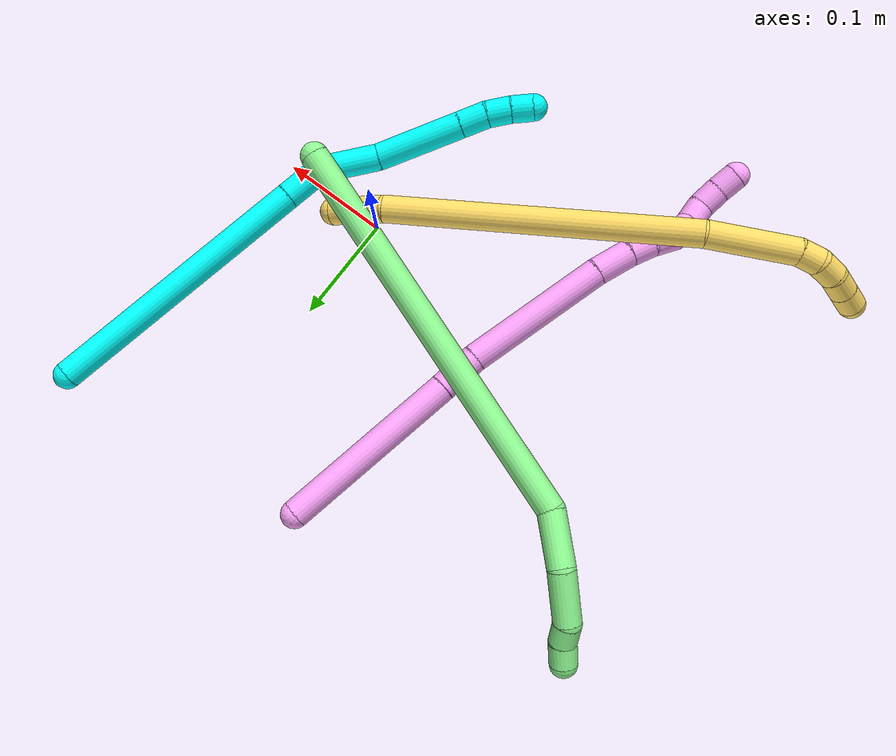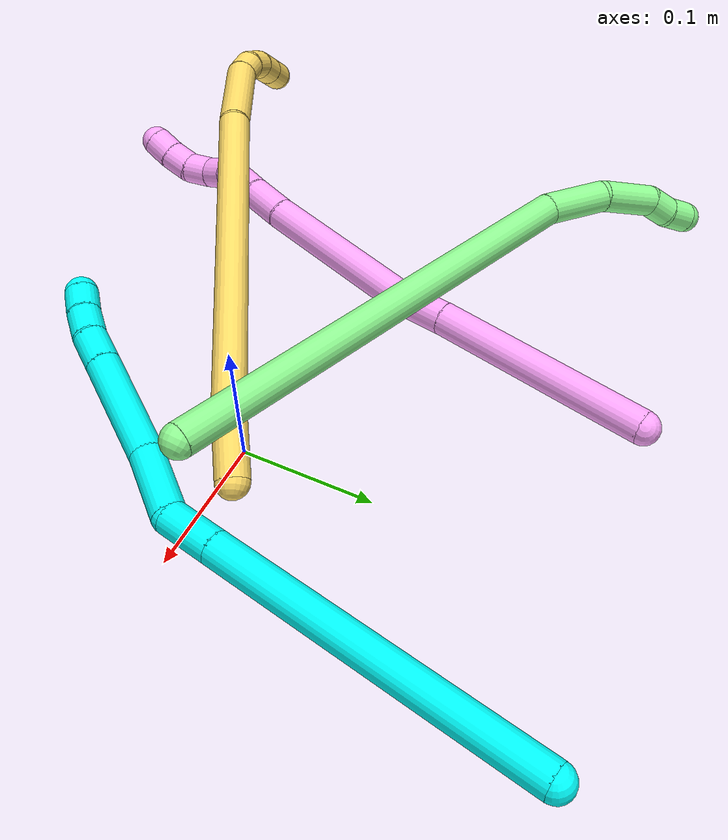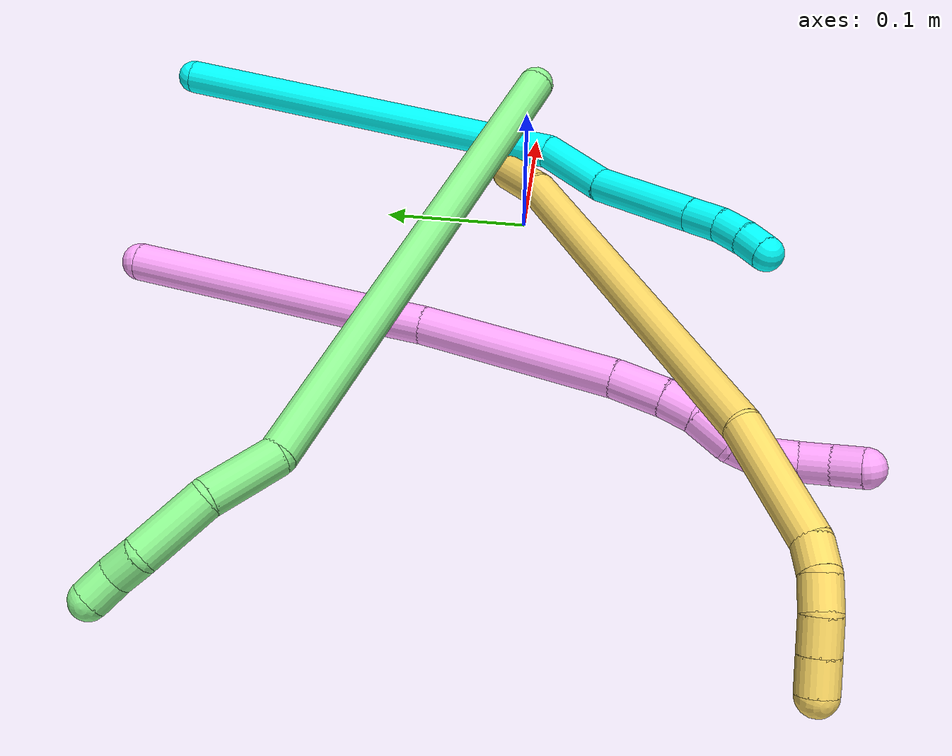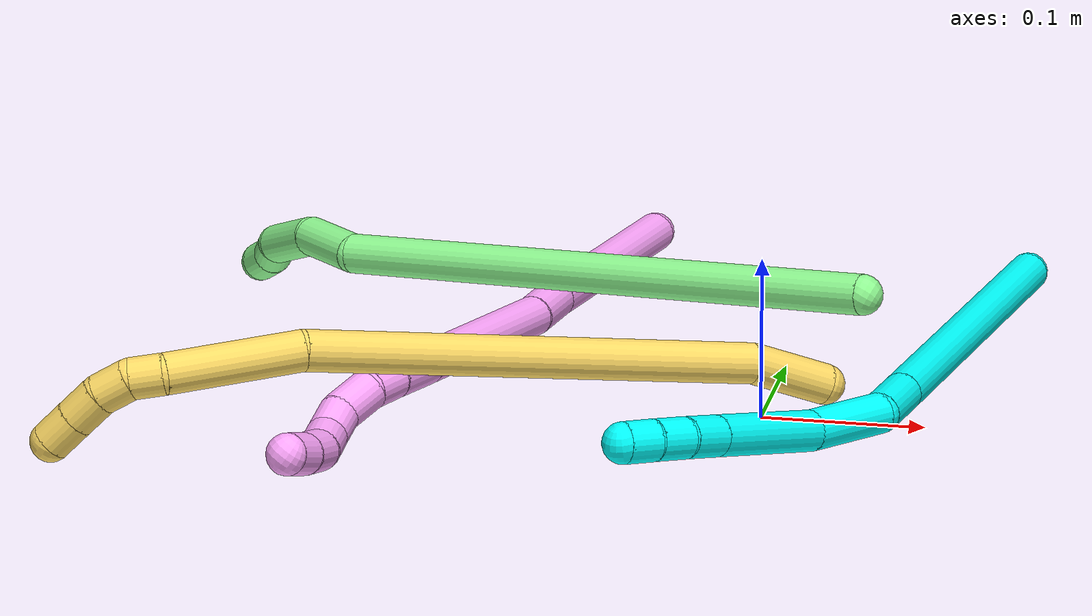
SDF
<sdf version="1.7">
 <world name="default">
  <model name="photoneo_s_sensor">
   <static>1</static>
   <pose>0 0 2 1.57079 1.57079 3.14159</pose>
   <link name="link">
    <inertial><mass>0.1</mass></inertial>
    <sensor name="sensor" type="depth">
     <update_rate>30</update_rate>
     <camera>
      <horizontal_fov>1.22</horizontal_fov>
      <image><width>1920</width><height>1200</height><format>B8G8R8</format></image>
      <clip><near>0.1</near><far>4</far></clip>
      <depth_camera><output>points</output></depth_camera>
     </camera>
     <plugin name="camera_plugin" filename="libgazebo_ros_depth_camera.so">
      <baseline>0.2</baseline>
      <alwaysOn>1</alwaysOn>
      <updateRate>0.0</updateRate>
      <cameraName>camera_ir</cameraName>
      <imageTopicName>/camera/color/image_raw</imageTopicName>
      <cameraInfoTopicName>/camera/color/camera_info</cameraInfoTopicName>
      <depthImageTopicName>/camera/depth/image_raw</depthImageTopicName>
      <depthImageCameraInfoTopicName>/camera/depth/camera_info</depthImageCameraInfoTopicName>
      <pointCloudTopicName>/camera/depth/points</pointCloudTopicName>
      <frameName>fr_optical</frameName>
      <pointCloudCutoff>0.1</pointCloudCutoff>
      <pointCloudCutoffMax>2.0</pointCloudCutoffMax>
      <distortionK1>0</distortionK1>
      <distortionK2>0</distortionK2>
      <distortionK3>0</distortionK3>
      <distortionT1>0</distortionT1>
      <distortionT2>0</distortionT2>
      <CxPrime>0</CxPrime>
      <Cx>0</Cx>
      <Cy>0</Cy>
      <focalLength>0</focalLength>
      <hackBaseline>0</hackBaseline>
     </plugin>
    </sensor>
   </link>
  </model>
  <model name="bin">
   <static>1</static>
   <link name="bottom">
    <collision name="collision-bottom">
     <pose>0 0 -0.01 0 -0 0</pose>
     <geometry><box><size>0.8 0.6 0.02</size></box></geometry>
     <surface>
      <friction><ode><mu>100</mu><mu2>100</mu2></ode></friction>
      <contact><collide_bitmask>65535</collide_bitmask></contact>
     </surface>
    </collision>
   </link>
   <link name="west_wall">
    <collision name="collision-west_wall">
     <pose>-0.41 0 0.1 0 -0 0</pose>
     <geometry><box><size>0.02 0.6 0.2</size></box></geometry>
     <surface>
      <friction><ode><mu>100</mu><mu2>100</mu2></ode></friction>
      <contact><collide_bitmask>65535</collide_bitmask></contact>
     </surface>
    </collision>
   </link>
   <link name="east_wall">
    <collision name="collision-east_wall">
     <pose>0.41 0 0.1 0 -0 0</pose>
     <geometry><box><size>0.02 0.6 0.2</size></box></geometry>
     <surface>
      <friction><ode><mu>100</mu><mu2>100</mu2></ode></friction>
      <contact><collide_bitmask>65535</collide_bitmask></contact>
     </surface>
    </collision>
   </link>
   <link name="south_wall">
    <collision name="collision-south_wall">
     <pose>0 -0.31 0.1 0 -0 0</pose>
     <geometry><box><size>0.8 0.02 0.2</size></box></geometry>
     <surface>
      <friction><ode><mu>100</mu><mu2>100</mu2></ode></friction>
      <contact><collide_bitmask>65535</collide_bitmask></contact>
     </surface>
    </collision>
   </link>
   <link name="north_wall">
    <collision name="collision-north_wall">
     <pose>0 0.31 0.1 0 -0 0</pose>
     <geometry><box><size>0.8 0.02 0.2</size></box></geometry>
     <surface>
      <friction><ode><mu>100</mu><mu2>100</mu2></ode></friction>
      <contact><collide_bitmask>65535</collide_bitmask></contact>
     </surface>
    </collision>
   </link>
  </model>
  <model name="3">
   <static>0</static>
   <link name="3">
    <collision name="collision-cylinder-e_1_1_4">
     <pose>-0.096451 -0.079969 -0.019293 1.80753 -0.864621 -1.0601</pose>
     <geometry><cylinder><radius>0.0125</radius><length>0.253535</length></cylinder></geometry>
     <surface>
      <friction><ode><mu>1.16</mu><mu2>1.16</mu2><slip1>0</slip1><slip2>0</slip2></ode></friction>
      <contact><ode><kp>1e+06</kp><kd>1</kd><max_vel>0</max_vel><min_depth>0.001</min_depth></ode></contact>
     </surface>
    </collision>
    <visual name="visual-cylinder-e_1_1_4">
     <pose>-0.096451 -0.079969 -0.019293 1.80753 -0.864621 -1.0601</pose>
     <geometry><cylinder><radius>0.0125</radius><length>0.253535</length></cylinder></geometry>
     <material><ambient>0.003922 1 0.996078 1</ambient></material>
    </visual>
    <collision name="collision-cylinder-e_2_4_5">
     <pose>-0.208193 -0.172628 -0.04177 1.81656 -0.862998 -1.06635</pose>
     <geometry><cylinder><radius>0.0125</radius><length>0.040249</length></cylinder></geometry>
     <surface>
      <friction><ode><mu>1.16</mu><mu2>1.16</mu2><slip1>0</slip1><slip2>0</slip2></ode></friction>
      <contact><ode><kp>1e+06</kp><kd>1</kd><max_vel>0</max_vel><min_depth>0.001</min_depth></ode></contact>
     </surface>
    </collision>
    <visual name="visual-cylinder-e_2_4_5">
     <pose>-0.208193 -0.172628 -0.04177 1.81656 -0.862998 -1.06635</pose>
     <geometry><cylinder><radius>0.0125</radius><length>0.040249</length></cylinder></geometry>
     <material><ambient>0.003922 1 0.996078 1</ambient></material>
    </visual>
    <collision name="collision-cylinder-e_3_5_6">
     <pose>-0.233143 -0.210758 -0.049897 1.76275 -0.356804 -0.430692</pose>
     <geometry><cylinder><radius>0.0125</radius><length>0.055313</length></cylinder></geometry>
     <surface>
      <friction><ode><mu>1.16</mu><mu2>1.16</mu2><slip1>0</slip1><slip2>0</slip2></ode></friction>
      <contact><ode><kp>1e+06</kp><kd>1</kd><max_vel>0</max_vel><min_depth>0.001</min_depth></ode></contact>
     </surface>
    </collision>
    <visual name="visual-cylinder-e_3_5_6">
     <pose>-0.233143 -0.210758 -0.049897 1.76275 -0.356804 -0.430692</pose>
     <geometry><cylinder><radius>0.0125</radius><length>0.055313</length></cylinder></geometry>
     <material><ambient>0.003922 1 0.996078 1</ambient></material>
    </visual>
    <collision name="collision-cylinder-e_4_6_7">
     <pose>-0.259597 -0.270418 -0.06958 1.97748 -0.423454 -0.631384</pose>
     <geometry><cylinder><radius>0.0125</radius><length>0.081741</length></cylinder></geometry>
     <surface>
      <friction><ode><mu>1.16</mu><mu2>1.16</mu2><slip1>0</slip1><slip2>0</slip2></ode></friction>
      <contact><ode><kp>1e+06</kp><kd>1</kd><max_vel>0</max_vel><min_depth>0.001</min_depth></ode></contact>
     </surface>
    </collision>
    <visual name="visual-cylinder-e_4_6_7">
     <pose>-0.259597 -0.270418 -0.06958 1.97748 -0.423454 -0.631384</pose>
     <geometry><cylinder><radius>0.0125</radius><length>0.081741</length></cylinder></geometry>
     <material><ambient>0.003922 1 0.996078 1</ambient></material>
    </visual>
    <collision name="collision-cylinder-e_5_7_8">
     <pose>-0.281755 -0.315492 -0.088955 1.97452 -0.426591 -0.633975</pose>
     <geometry><cylinder><radius>0.0125</radius><length>0.025925</length></cylinder></geometry>
     <surface>
      <friction><ode><mu>1.16</mu><mu2>1.16</mu2><slip1>0</slip1><slip2>0</slip2></ode></friction>
      <contact><ode><kp>1e+06</kp><kd>1</kd><max_vel>0</max_vel><min_depth>0.001</min_depth></ode></contact>
     </surface>
    </collision>
    <visual name="visual-cylinder-e_5_7_8">
     <pose>-0.281755 -0.315492 -0.088955 1.97452 -0.426591 -0.633975</pose>
     <geometry><cylinder><radius>0.0125</radius><length>0.025925</length></cylinder></geometry>
     <material><ambient>0.003922 1 0.996078 1</ambient></material>
    </visual>
    <collision name="collision-cylinder-e_6_8_9">
     <pose>-0.290218 -0.33665 -0.096865 1.87839 -0.279137 -0.379435</pose>
     <geometry><cylinder><radius>0.0125</radius><length>0.022498</length></cylinder></geometry>
     <surface>
      <friction><ode><mu>1.16</mu><mu2>1.16</mu2><slip1>0</slip1><slip2>0</slip2></ode></friction>
      <contact><ode><kp>1e+06</kp><kd>1</kd><max_vel>0</max_vel><min_depth>0.001</min_depth></ode></contact>
     </surface>
    </collision>
    <visual name="visual-cylinder-e_6_8_9">
     <pose>-0.290218 -0.33665 -0.096865 1.87839 -0.279137 -0.379435</pose>
     <geometry><cylinder><radius>0.0125</radius><length>0.022498</length></cylinder></geometry>
     <material><ambient>0.003922 1 0.996078 1</ambient></material>
    </visual>
    <collision name="collision-cylinder-e_7_9_2">
     <pose>-0.295242 -0.35683 -0.102653 1.82011 -0.186708 -0.239747</pose>
     <geometry><cylinder><radius>0.0125</radius><length>0.020739</length></cylinder></geometry>
     <surface>
      <friction><ode><mu>1.16</mu><mu2>1.16</mu2><slip1>0</slip1><slip2>0</slip2></ode></friction>
      <contact><ode><kp>1e+06</kp><kd>1</kd><max_vel>0</max_vel><min_depth>0.001</min_depth></ode></contact>
     </surface>
    </collision>
    <visual name="visual-cylinder-e_7_9_2">
     <pose>-0.295242 -0.35683 -0.102653 1.82011 -0.186708 -0.239747</pose>
     <geometry><cylinder><radius>0.0125</radius><length>0.020739</length></cylinder></geometry>
     <material><ambient>0.003922 1 0.996078 1</ambient></material>
    </visual>
    <collision name="collision-sphere-2">
     <pose>-0.297167 -0.366704 -0.105167 0 -0 0</pose>
     <geometry><sphere><radius>0.0125</radius></sphere></geometry>
     <surface>
      <friction><ode><mu>1.16</mu><mu2>1.16</mu2><slip1>0</slip1><slip2>0</slip2></ode></friction>
      <contact><ode><kp>1e+06</kp><kd>1</kd><max_vel>0</max_vel><min_depth>0.001</min_depth></ode></contact>
     </surface>
    </collision>
    <visual name="visual-sphere-2">
     <pose>-0.297167 -0.366704 -0.105167 0 -0 0</pose>
     <geometry><sphere><radius>0.0125</radius></sphere></geometry>
     <material><ambient>0.003922 1 0.996078 1</ambient></material>
    </visual>
    <collision name="collision-sphere-9">
     <pose>-0.293317 -0.346956 -0.100139 0 -0 0</pose>
     <geometry><sphere><radius>0.0125</radius></sphere></geometry>
     <surface>
      <friction><ode><mu>1.16</mu><mu2>1.16</mu2><slip1>0</slip1><slip2>0</slip2></ode></friction>
      <contact><ode><kp>1e+06</kp><kd>1</kd><max_vel>0</max_vel><min_depth>0.001</min_depth></ode></contact>
     </surface>
    </collision>
    <visual name="visual-sphere-9">
     <pose>-0.293317 -0.346956 -0.100139 0 -0 0</pose>
     <geometry><sphere><radius>0.0125</radius></sphere></geometry>
     <material><ambient>0.003922 1 0.996078 1</ambient></material>
    </visual>
    <collision name="collision-sphere-4">
     <pose>-0.192902 -0.159937 -0.038587 0 -0 0</pose>
     <geometry><sphere><radius>0.0125</radius></sphere></geometry>
     <surface>
      <friction><ode><mu>1.16</mu><mu2>1.16</mu2><slip1>0</slip1><slip2>0</slip2></ode></friction>
      <contact><ode><kp>1e+06</kp><kd>1</kd><max_vel>0</max_vel><min_depth>0.001</min_depth></ode></contact>
     </surface>
    </collision>
    <visual name="visual-sphere-4">
     <pose>-0.192902 -0.159937 -0.038587 0 -0 0</pose>
     <geometry><sphere><radius>0.0125</radius></sphere></geometry>
     <material><ambient>0.003922 1 0.996078 1</ambient></material>
    </visual>
    <collision name="collision-sphere-1">
     <geometry><sphere><radius>0.0125</radius></sphere></geometry>
     <surface>
      <friction><ode><mu>1.16</mu><mu2>1.16</mu2><slip1>0</slip1><slip2>0</slip2></ode></friction>
      <contact><ode><kp>1e+06</kp><kd>1</kd><max_vel>0</max_vel><min_depth>0.001</min_depth></ode></contact>
     </surface>
    </collision>
    <visual name="visual-sphere-1">
     <geometry><sphere><radius>0.0125</radius></sphere></geometry>
     <material><ambient>0.003922 1 0.996078 1</ambient></material>
    </visual>
    <collision name="collision-sphere-8">
     <pose>-0.287118 -0.326344 -0.093591 0 -0 0</pose>
     <geometry><sphere><radius>0.0125</radius></sphere></geometry>
     <surface>
      <friction><ode><mu>1.16</mu><mu2>1.16</mu2><slip1>0</slip1><slip2>0</slip2></ode></friction>
      <contact><ode><kp>1e+06</kp><kd>1</kd><max_vel>0</max_vel><min_depth>0.001</min_depth></ode></contact>
     </surface>
    </collision>
    <visual name="visual-sphere-8">
     <pose>-0.287118 -0.326344 -0.093591 0 -0 0</pose>
     <geometry><sphere><radius>0.0125</radius></sphere></geometry>
     <material><ambient>0.003922 1 0.996078 1</ambient></material>
    </visual>
    <collision name="collision-sphere-5">
     <pose>-0.223483 -0.185319 -0.044954 0 -0 0</pose>
     <geometry><sphere><radius>0.0125</radius></sphere></geometry>
     <surface>
      <friction><ode><mu>1.16</mu><mu2>1.16</mu2><slip1>0</slip1><slip2>0</slip2></ode></friction>
      <contact><ode><kp>1e+06</kp><kd>1</kd><max_vel>0</max_vel><min_depth>0.001</min_depth></ode></contact>
     </surface>
    </collision>
    <visual name="visual-sphere-5">
     <pose>-0.223483 -0.185319 -0.044954 0 -0 0</pose>
     <geometry><sphere><radius>0.0125</radius></sphere></geometry>
     <material><ambient>0.003922 1 0.996078 1</ambient></material>
    </visual>
    <collision name="collision-sphere-6">
     <pose>-0.242803 -0.236197 -0.054841 0 -0 0</pose>
     <geometry><sphere><radius>0.0125</radius></sphere></geometry>
     <surface>
      <friction><ode><mu>1.16</mu><mu2>1.16</mu2><slip1>0</slip1><slip2>0</slip2></ode></friction>
      <contact><ode><kp>1e+06</kp><kd>1</kd><max_vel>0</max_vel><min_depth>0.001</min_depth></ode></contact>
     </surface>
    </collision>
    <visual name="visual-sphere-6">
     <pose>-0.242803 -0.236197 -0.054841 0 -0 0</pose>
     <geometry><sphere><radius>0.0125</radius></sphere></geometry>
     <material><ambient>0.003922 1 0.996078 1</ambient></material>
    </visual>
    <collision name="collision-sphere-7">
     <pose>-0.276391 -0.30464 -0.08432 0 -0 0</pose>
     <geometry><sphere><radius>0.0125</radius></sphere></geometry>
     <surface>
      <friction><ode><mu>1.16</mu><mu2>1.16</mu2><slip1>0</slip1><slip2>0</slip2></ode></friction>
      <contact><ode><kp>1e+06</kp><kd>1</kd><max_vel>0</max_vel><min_depth>0.001</min_depth></ode></contact>
     </surface>
    </collision>
    <visual name="visual-sphere-7">
     <pose>-0.276391 -0.30464 -0.08432 0 -0 0</pose>
     <geometry><sphere><radius>0.0125</radius></sphere></geometry>
     <material><ambient>0.003922 1 0.996078 1</ambient></material>
    </visual>
    <inertial>
     <pose>-0.173811 -0.168276 -0.043269 0 -0 0</pose>
     <mass>0.5</mass>
     <inertia>
      <ixx>-0.000346</ixx>
      <ixy>0</ixy>
      <ixz>0</ixz>
      <iyy>-0.000118</iyy>
      <iyz>0</iyz>
      <izz>0.001994</izz>
     </inertia>
    </inertial>
   </link>
   <pose>0.131082 0.277242 0.015466 2.99899 -0.098327 2.07819</pose>
  </model>
  <model name="4">
   <static>0</static>
   <link name="4">
    <collision name="collision-cylinder-e_1_1_4">
     <pose>-0.043185 -0.066705 -0.022628 1.89783 -0.549981 -0.750015</pose>
     <geometry><cylinder><radius>0.0125</radius><length>0.165246</length></cylinder></geometry>
     <surface>
      <friction><ode><mu>1.16</mu><mu2>1.16</mu2><slip1>0</slip1><slip2>0</slip2></ode></friction>
      <contact><ode><kp>1e+06</kp><kd>1</kd><max_vel>0</max_vel><min_depth>0.001</min_depth></ode></contact>
     </surface>
    </collision>
    <visual name="visual-cylinder-e_1_1_4">
     <pose>-0.043185 -0.066705 -0.022628 1.89783 -0.549981 -0.750015</pose>
     <geometry><cylinder><radius>0.0125</radius><length>0.165246</length></cylinder></geometry>
     <material><ambient>1 0.65098 0.996078 1</ambient></material>
    </visual>
    <collision name="collision-cylinder-e_2_4_5">
     <pose>-0.095518 -0.149113 -0.050403 1.88759 -0.505635 -0.685031</pose>
     <geometry><cylinder><radius>0.0125</radius><length>0.037775</length></cylinder></geometry>
     <surface>
      <friction><ode><mu>1.16</mu><mu2>1.16</mu2><slip1>0</slip1><slip2>0</slip2></ode></friction>
      <contact><ode><kp>1e+06</kp><kd>1</kd><max_vel>0</max_vel><min_depth>0.001</min_depth></ode></contact>
     </surface>
    </collision>
    <visual name="visual-cylinder-e_2_4_5">
     <pose>-0.095518 -0.149113 -0.050403 1.88759 -0.505635 -0.685031</pose>
     <geometry><cylinder><radius>0.0125</radius><length>0.037775</length></cylinder></geometry>
     <material><ambient>1 0.65098 0.996078 1</ambient></material>
    </visual>
    <collision name="collision-cylinder-e_3_5_6">
     <pose>-0.144221 -0.21354 -0.074797 1.94698 -0.646712 -0.915558</pose>
     <geometry><cylinder><radius>0.0125</radius><length>0.131288</length></cylinder></geometry>
     <surface>
      <friction><ode><mu>1.16</mu><mu2>1.16</mu2><slip1>0</slip1><slip2>0</slip2></ode></friction>
      <contact><ode><kp>1e+06</kp><kd>1</kd><max_vel>0</max_vel><min_depth>0.001</min_depth></ode></contact>
     </surface>
    </collision>
    <visual name="visual-cylinder-e_3_5_6">
     <pose>-0.144221 -0.21354 -0.074797 1.94698 -0.646712 -0.915558</pose>
     <geometry><cylinder><radius>0.0125</radius><length>0.131288</length></cylinder></geometry>
     <material><ambient>1 0.65098 0.996078 1</ambient></material>
    </visual>
    <collision name="collision-cylinder-e_4_6_7">
     <pose>-0.194434 -0.273893 -0.100251 2.06113 -0.679952 -1.06573</pose>
     <geometry><cylinder><radius>0.0125</radius><length>0.033903</length></cylinder></geometry>
     <surface>
      <friction><ode><mu>1.16</mu><mu2>1.16</mu2><slip1>0</slip1><slip2>0</slip2></ode></friction>
      <contact><ode><kp>1e+06</kp><kd>1</kd><max_vel>0</max_vel><min_depth>0.001</min_depth></ode></contact>
     </surface>
    </collision>
    <visual name="visual-cylinder-e_4_6_7">
     <pose>-0.194434 -0.273893 -0.100251 2.06113 -0.679952 -1.06573</pose>
     <geometry><cylinder><radius>0.0125</radius><length>0.033903</length></cylinder></geometry>
     <material><ambient>1 0.65098 0.996078 1</ambient></material>
    </visual>
    <collision name="collision-cylinder-e_5_7_8">
     <pose>-0.211889 -0.292328 -0.111462 2.20476 -0.677496 -1.21653</pose>
     <geometry><cylinder><radius>0.0125</radius><length>0.021684</length></cylinder></geometry>
     <surface>
      <friction><ode><mu>1.16</mu><mu2>1.16</mu2><slip1>0</slip1><slip2>0</slip2></ode></friction>
      <contact><ode><kp>1e+06</kp><kd>1</kd><max_vel>0</max_vel><min_depth>0.001</min_depth></ode></contact>
     </surface>
    </collision>
    <visual name="visual-cylinder-e_5_7_8">
     <pose>-0.211889 -0.292328 -0.111462 2.20476 -0.677496 -1.21653</pose>
     <geometry><cylinder><radius>0.0125</radius><length>0.021684</length></cylinder></geometry>
     <material><ambient>1 0.65098 0.996078 1</ambient></material>
    </visual>
    <collision name="collision-cylinder-e_6_8_9">
     <pose>-0.224827 -0.306705 -0.12542 2.43966 -0.482487 -1.18336</pose>
     <geometry><cylinder><radius>0.0125</radius><length>0.026474</length></cylinder></geometry>
     <surface>
      <friction><ode><mu>1.16</mu><mu2>1.16</mu2><slip1>0</slip1><slip2>0</slip2></ode></friction>
      <contact><ode><kp>1e+06</kp><kd>1</kd><max_vel>0</max_vel><min_depth>0.001</min_depth></ode></contact>
     </surface>
    </collision>
    <visual name="visual-cylinder-e_6_8_9">
     <pose>-0.224827 -0.306705 -0.12542 2.43966 -0.482487 -1.18336</pose>
     <geometry><cylinder><radius>0.0125</radius><length>0.026474</length></cylinder></geometry>
     <material><ambient>1 0.65098 0.996078 1</ambient></material>
    </visual>
    <collision name="collision-cylinder-e_7_9_10">
     <pose>-0.233485 -0.322942 -0.139972 2.14442 -0.239305 -0.434655</pose>
     <geometry><cylinder><radius>0.0125</radius><length>0.021238</length></cylinder></geometry>
     <surface>
      <friction><ode><mu>1.16</mu><mu2>1.16</mu2><slip1>0</slip1><slip2>0</slip2></ode></friction>
      <contact><ode><kp>1e+06</kp><kd>1</kd><max_vel>0</max_vel><min_depth>0.001</min_depth></ode></contact>
     </surface>
    </collision>
    <visual name="visual-cylinder-e_7_9_10">
     <pose>-0.233485 -0.322942 -0.139972 2.14442 -0.239305 -0.434655</pose>
     <geometry><cylinder><radius>0.0125</radius><length>0.021238</length></cylinder></geometry>
     <material><ambient>1 0.65098 0.996078 1</ambient></material>
    </visual>
    <collision name="collision-cylinder-e_8_10_11">
     <pose>-0.239261 -0.341429 -0.147851 1.79889 -0.312553 -0.391569</pose>
     <geometry><cylinder><radius>0.0125</radius><length>0.021194</length></cylinder></geometry>
     <surface>
      <friction><ode><mu>1.16</mu><mu2>1.16</mu2><slip1>0</slip1><slip2>0</slip2></ode></friction>
      <contact><ode><kp>1e+06</kp><kd>1</kd><max_vel>0</max_vel><min_depth>0.001</min_depth></ode></contact>
     </surface>
    </collision>
    <visual name="visual-cylinder-e_8_10_11">
     <pose>-0.239261 -0.341429 -0.147851 1.79889 -0.312553 -0.391569</pose>
     <geometry><cylinder><radius>0.0125</radius><length>0.021194</length></cylinder></geometry>
     <material><ambient>1 0.65098 0.996078 1</ambient></material>
    </visual>
    <collision name="collision-cylinder-e_9_11_12">
     <pose>-0.248943 -0.359589 -0.15127 1.70663 -0.652004 -0.739216</pose>
     <geometry><cylinder><radius>0.0125</radius><length>0.021173</length></cylinder></geometry>
     <surface>
      <friction><ode><mu>1.16</mu><mu2>1.16</mu2><slip1>0</slip1><slip2>0</slip2></ode></friction>
      <contact><ode><kp>1e+06</kp><kd>1</kd><max_vel>0</max_vel><min_depth>0.001</min_depth></ode></contact>
     </surface>
    </collision>
    <visual name="visual-cylinder-e_9_11_12">
     <pose>-0.248943 -0.359589 -0.15127 1.70663 -0.652004 -0.739216</pose>
     <geometry><cylinder><radius>0.0125</radius><length>0.021173</length></cylinder></geometry>
     <material><ambient>1 0.65098 0.996078 1</ambient></material>
    </visual>
    <collision name="collision-cylinder-e_10_12_2">
     <pose>-0.26235 -0.375061 -0.153171 1.67706 -0.77178 -0.848859</pose>
     <geometry><cylinder><radius>0.0125</radius><length>0.020025</length></cylinder></geometry>
     <surface>
      <friction><ode><mu>1.16</mu><mu2>1.16</mu2><slip1>0</slip1><slip2>0</slip2></ode></friction>
      <contact><ode><kp>1e+06</kp><kd>1</kd><max_vel>0</max_vel><min_depth>0.001</min_depth></ode></contact>
     </surface>
    </collision>
    <visual name="visual-cylinder-e_10_12_2">
     <pose>-0.26235 -0.375061 -0.153171 1.67706 -0.77178 -0.848859</pose>
     <geometry><cylinder><radius>0.0125</radius><length>0.020025</length></cylinder></geometry>
     <material><ambient>1 0.65098 0.996078 1</ambient></material>
    </visual>
    <collision name="collision-sphere-2">
     <pose>-0.269332 -0.382197 -0.153932 0 -0 0</pose>
     <geometry><sphere><radius>0.0125</radius></sphere></geometry>
     <surface>
      <friction><ode><mu>1.16</mu><mu2>1.16</mu2><slip1>0</slip1><slip2>0</slip2></ode></friction>
      <contact><ode><kp>1e+06</kp><kd>1</kd><max_vel>0</max_vel><min_depth>0.001</min_depth></ode></contact>
     </surface>
    </collision>
    <visual name="visual-sphere-2">
     <pose>-0.269332 -0.382197 -0.153932 0 -0 0</pose>
     <geometry><sphere><radius>0.0125</radius></sphere></geometry>
     <material><ambient>1 0.65098 0.996078 1</ambient></material>
    </visual>
    <collision name="collision-sphere-12">
     <pose>-0.255367 -0.367926 -0.15241 0 -0 0</pose>
     <geometry><sphere><radius>0.0125</radius></sphere></geometry>
     <surface>
      <friction><ode><mu>1.16</mu><mu2>1.16</mu2><slip1>0</slip1><slip2>0</slip2></ode></friction>
      <contact><ode><kp>1e+06</kp><kd>1</kd><max_vel>0</max_vel><min_depth>0.001</min_depth></ode></contact>
     </surface>
    </collision>
    <visual name="visual-sphere-12">
     <pose>-0.255367 -0.367926 -0.15241 0 -0 0</pose>
     <geometry><sphere><radius>0.0125</radius></sphere></geometry>
     <material><ambient>1 0.65098 0.996078 1</ambient></material>
    </visual>
    <collision name="collision-sphere-11">
     <pose>-0.242519 -0.351251 -0.150131 0 -0 0</pose>
     <geometry><sphere><radius>0.0125</radius></sphere></geometry>
     <surface>
      <friction><ode><mu>1.16</mu><mu2>1.16</mu2><slip1>0</slip1><slip2>0</slip2></ode></friction>
      <contact><ode><kp>1e+06</kp><kd>1</kd><max_vel>0</max_vel><min_depth>0.001</min_depth></ode></contact>
     </surface>
    </collision>
    <visual name="visual-sphere-11">
     <pose>-0.242519 -0.351251 -0.150131 0 -0 0</pose>
     <geometry><sphere><radius>0.0125</radius></sphere></geometry>
     <material><ambient>1 0.65098 0.996078 1</ambient></material>
    </visual>
    <collision name="collision-sphere-10">
     <pose>-0.236002 -0.331607 -0.145571 0 -0 0</pose>
     <geometry><sphere><radius>0.0125</radius></sphere></geometry>
     <surface>
      <friction><ode><mu>1.16</mu><mu2>1.16</mu2><slip1>0</slip1><slip2>0</slip2></ode></friction>
      <contact><ode><kp>1e+06</kp><kd>1</kd><max_vel>0</max_vel><min_depth>0.001</min_depth></ode></contact>
     </surface>
    </collision>
    <visual name="visual-sphere-10">
     <pose>-0.236002 -0.331607 -0.145571 0 -0 0</pose>
     <geometry><sphere><radius>0.0125</radius></sphere></geometry>
     <material><ambient>1 0.65098 0.996078 1</ambient></material>
    </visual>
    <collision name="collision-sphere-9">
     <pose>-0.230968 -0.314277 -0.134374 0 -0 0</pose>
     <geometry><sphere><radius>0.0125</radius></sphere></geometry>
     <surface>
      <friction><ode><mu>1.16</mu><mu2>1.16</mu2><slip1>0</slip1><slip2>0</slip2></ode></friction>
      <contact><ode><kp>1e+06</kp><kd>1</kd><max_vel>0</max_vel><min_depth>0.001</min_depth></ode></contact>
     </surface>
    </collision>
    <visual name="visual-sphere-9">
     <pose>-0.230968 -0.314277 -0.134374 0 -0 0</pose>
     <geometry><sphere><radius>0.0125</radius></sphere></geometry>
     <material><ambient>1 0.65098 0.996078 1</ambient></material>
    </visual>
    <collision name="collision-sphere-4">
     <pose>-0.086369 -0.133411 -0.045255 0 -0 0</pose>
     <geometry><sphere><radius>0.0125</radius></sphere></geometry>
     <surface>
      <friction><ode><mu>1.16</mu><mu2>1.16</mu2><slip1>0</slip1><slip2>0</slip2></ode></friction>
      <contact><ode><kp>1e+06</kp><kd>1</kd><max_vel>0</max_vel><min_depth>0.001</min_depth></ode></contact>
     </surface>
    </collision>
    <visual name="visual-sphere-4">
     <pose>-0.086369 -0.133411 -0.045255 0 -0 0</pose>
     <geometry><sphere><radius>0.0125</radius></sphere></geometry>
     <material><ambient>1 0.65098 0.996078 1</ambient></material>
    </visual>
    <collision name="collision-sphere-1">
     <geometry><sphere><radius>0.0125</radius></sphere></geometry>
     <surface>
      <friction><ode><mu>1.16</mu><mu2>1.16</mu2><slip1>0</slip1><slip2>0</slip2></ode></friction>
      <contact><ode><kp>1e+06</kp><kd>1</kd><max_vel>0</max_vel><min_depth>0.001</min_depth></ode></contact>
     </surface>
    </collision>
    <visual name="visual-sphere-1">
     <geometry><sphere><radius>0.0125</radius></sphere></geometry>
     <material><ambient>1 0.65098 0.996078 1</ambient></material>
    </visual>
    <collision name="collision-sphere-8">
     <pose>-0.218685 -0.299134 -0.116466 0 -0 0</pose>
     <geometry><sphere><radius>0.0125</radius></sphere></geometry>
     <surface>
      <friction><ode><mu>1.16</mu><mu2>1.16</mu2><slip1>0</slip1><slip2>0</slip2></ode></friction>
      <contact><ode><kp>1e+06</kp><kd>1</kd><max_vel>0</max_vel><min_depth>0.001</min_depth></ode></contact>
     </surface>
    </collision>
    <visual name="visual-sphere-8">
     <pose>-0.218685 -0.299134 -0.116466 0 -0 0</pose>
     <geometry><sphere><radius>0.0125</radius></sphere></geometry>
     <material><ambient>1 0.65098 0.996078 1</ambient></material>
    </visual>
    <collision name="collision-sphere-5">
     <pose>-0.104666 -0.164814 -0.055551 0 -0 0</pose>
     <geometry><sphere><radius>0.0125</radius></sphere></geometry>
     <surface>
      <friction><ode><mu>1.16</mu><mu2>1.16</mu2><slip1>0</slip1><slip2>0</slip2></ode></friction>
      <contact><ode><kp>1e+06</kp><kd>1</kd><max_vel>0</max_vel><min_depth>0.001</min_depth></ode></contact>
     </surface>
    </collision>
    <visual name="visual-sphere-5">
     <pose>-0.104666 -0.164814 -0.055551 0 -0 0</pose>
     <geometry><sphere><radius>0.0125</radius></sphere></geometry>
     <material><ambient>1 0.65098 0.996078 1</ambient></material>
    </visual>
    <collision name="collision-sphere-6">
     <pose>-0.183776 -0.262265 -0.094043 0 -0 0</pose>
     <geometry><sphere><radius>0.0125</radius></sphere></geometry>
     <surface>
      <friction><ode><mu>1.16</mu><mu2>1.16</mu2><slip1>0</slip1><slip2>0</slip2></ode></friction>
      <contact><ode><kp>1e+06</kp><kd>1</kd><max_vel>0</max_vel><min_depth>0.001</min_depth></ode></contact>
     </surface>
    </collision>
    <visual name="visual-sphere-6">
     <pose>-0.183776 -0.262265 -0.094043 0 -0 0</pose>
     <geometry><sphere><radius>0.0125</radius></sphere></geometry>
     <material><ambient>1 0.65098 0.996078 1</ambient></material>
    </visual>
    <collision name="collision-sphere-7">
     <pose>-0.205093 -0.285522 -0.106458 0 -0 0</pose>
     <geometry><sphere><radius>0.0125</radius></sphere></geometry>
     <surface>
      <friction><ode><mu>1.16</mu><mu2>1.16</mu2><slip1>0</slip1><slip2>0</slip2></ode></friction>
      <contact><ode><kp>1e+06</kp><kd>1</kd><max_vel>0</max_vel><min_depth>0.001</min_depth></ode></contact>
     </surface>
    </collision>
    <visual name="visual-sphere-7">
     <pose>-0.205093 -0.285522 -0.106458 0 -0 0</pose>
     <geometry><sphere><radius>0.0125</radius></sphere></geometry>
     <material><ambient>1 0.65098 0.996078 1</ambient></material>
    </visual>
    <inertial>
     <pose>-0.134743 -0.195308 -0.073951 0 -0 0</pose>
     <mass>0.5</mass>
     <inertia>
      <ixx>-3.4e-05</ixx>
      <ixy>0</ixy>
      <ixz>0</ixz>
      <iyy>-0.000303</iyy>
      <iyz>0</iyz>
      <izz>0.000784</izz>
     </inertia>
    </inertial>
   </link>
   <pose>-0.11048 0.249604 0.036565 0.10226 0.623991 0.476312</pose>
  </model>
  <model name="5">
   <static>0</static>
   <link name="5">
    <collision name="collision-cylinder-e_1_1_4">
     <pose>-0.000786 -0.003213 0.025218 0.126728 -0.030896 -0.00196</pose>
     <geometry><cylinder><radius>0.0125</radius><length>0.050868</length></cylinder></geometry>
     <surface>
      <friction><ode><mu>1.16</mu><mu2>1.16</mu2><slip1>0</slip1><slip2>0</slip2></ode></friction>
      <contact><ode><kp>1e+06</kp><kd>1</kd><max_vel>0</max_vel><min_depth>0.001</min_depth></ode></contact>
     </surface>
    </collision>
    <visual name="visual-cylinder-e_1_1_4">
     <pose>-0.000786 -0.003213 0.025218 0.126728 -0.030896 -0.00196</pose>
     <geometry><cylinder><radius>0.0125</radius><length>0.050868</length></cylinder></geometry>
     <material><ambient>1 0.858824 0.4 1</ambient></material>
    </visual>
    <collision name="collision-cylinder-e_2_4_5">
     <pose>-0.04016 -0.019375 0.185624 0.095492 -0.276847 -0.013313</pose>
     <geometry><cylinder><radius>0.0125</radius><length>0.282364</length></cylinder></geometry>
     <surface>
      <friction><ode><mu>1.16</mu><mu2>1.16</mu2><slip1>0</slip1><slip2>0</slip2></ode></friction>
      <contact><ode><kp>1e+06</kp><kd>1</kd><max_vel>0</max_vel><min_depth>0.001</min_depth></ode></contact>
     </surface>
    </collision>
    <visual name="visual-cylinder-e_2_4_5">
     <pose>-0.04016 -0.019375 0.185624 0.095492 -0.276847 -0.013313</pose>
     <geometry><cylinder><radius>0.0125</radius><length>0.282364</length></cylinder></geometry>
     <material><ambient>1 0.858824 0.4 1</ambient></material>
    </visual>
    <collision name="collision-cylinder-e_3_5_6">
     <pose>-0.098397 -0.034397 0.357399 0.056608 -0.492152 -0.014222</pose>
     <geometry><cylinder><radius>0.0125</radius><length>0.083165</length></cylinder></geometry>
     <surface>
      <friction><ode><mu>1.16</mu><mu2>1.16</mu2><slip1>0</slip1><slip2>0</slip2></ode></friction>
      <contact><ode><kp>1e+06</kp><kd>1</kd><max_vel>0</max_vel><min_depth>0.001</min_depth></ode></contact>
     </surface>
    </collision>
    <visual name="visual-cylinder-e_3_5_6">
     <pose>-0.098397 -0.034397 0.357399 0.056608 -0.492152 -0.014222</pose>
     <geometry><cylinder><radius>0.0125</radius><length>0.083165</length></cylinder></geometry>
     <material><ambient>1 0.858824 0.4 1</ambient></material>
    </visual>
    <collision name="collision-cylinder-e_4_6_7">
     <pose>-0.123195 -0.034257 0.40227 -0.261189 -0.540941 0.072801</pose>
     <geometry><cylinder><radius>0.0125</radius><length>0.020001</length></cylinder></geometry>
     <surface>
      <friction><ode><mu>1.16</mu><mu2>1.16</mu2><slip1>0</slip1><slip2>0</slip2></ode></friction>
      <contact><ode><kp>1e+06</kp><kd>1</kd><max_vel>0</max_vel><min_depth>0.001</min_depth></ode></contact>
     </surface>
    </collision>
    <visual name="visual-cylinder-e_4_6_7">
     <pose>-0.123195 -0.034257 0.40227 -0.261189 -0.540941 0.072801</pose>
     <geometry><cylinder><radius>0.0125</radius><length>0.020001</length></cylinder></geometry>
     <material><ambient>1 0.858824 0.4 1</ambient></material>
    </visual>
    <collision name="collision-cylinder-e_5_7_8">
     <pose>-0.136389 -0.028978 0.416281 -0.491213 -0.891393 0.238382</pose>
     <geometry><cylinder><radius>0.0125</radius><length>0.020681</length></cylinder></geometry>
     <surface>
      <friction><ode><mu>1.16</mu><mu2>1.16</mu2><slip1>0</slip1><slip2>0</slip2></ode></friction>
      <contact><ode><kp>1e+06</kp><kd>1</kd><max_vel>0</max_vel><min_depth>0.001</min_depth></ode></contact>
     </surface>
    </collision>
    <visual name="visual-cylinder-e_5_7_8">
     <pose>-0.136389 -0.028978 0.416281 -0.491213 -0.891393 0.238382</pose>
     <geometry><cylinder><radius>0.0125</radius><length>0.020681</length></cylinder></geometry>
     <material><ambient>1 0.858824 0.4 1</ambient></material>
    </visual>
    <collision name="collision-cylinder-e_6_8_9">
     <pose>-0.154206 -0.022855 0.425513 -0.717869 -1.12663 0.465338</pose>
     <geometry><cylinder><radius>0.0125</radius><length>0.021644</length></cylinder></geometry>
     <surface>
      <friction><ode><mu>1.16</mu><mu2>1.16</mu2><slip1>0</slip1><slip2>0</slip2></ode></friction>
      <contact><ode><kp>1e+06</kp><kd>1</kd><max_vel>0</max_vel><min_depth>0.001</min_depth></ode></contact>
     </surface>
    </collision>
    <visual name="visual-cylinder-e_6_8_9">
     <pose>-0.154206 -0.022855 0.425513 -0.717869 -1.12663 0.465338</pose>
     <geometry><cylinder><radius>0.0125</radius><length>0.021644</length></cylinder></geometry>
     <material><ambient>1 0.858824 0.4 1</ambient></material>
    </visual>
    <collision name="collision-cylinder-e_7_9_2">
     <pose>-0.173608 -0.016812 0.432412 -0.72083 -1.13185 0.469966</pose>
     <geometry><cylinder><radius>0.0125</radius><length>0.021277</length></cylinder></geometry>
     <surface>
      <friction><ode><mu>1.16</mu><mu2>1.16</mu2><slip1>0</slip1><slip2>0</slip2></ode></friction>
      <contact><ode><kp>1e+06</kp><kd>1</kd><max_vel>0</max_vel><min_depth>0.001</min_depth></ode></contact>
     </surface>
    </collision>
    <visual name="visual-cylinder-e_7_9_2">
     <pose>-0.173608 -0.016812 0.432412 -0.72083 -1.13185 0.469966</pose>
     <geometry><cylinder><radius>0.0125</radius><length>0.021277</length></cylinder></geometry>
     <material><ambient>1 0.858824 0.4 1</ambient></material>
    </visual>
    <collision name="collision-sphere-2">
     <pose>-0.183237 -0.013828 0.435809 0 -0 0</pose>
     <geometry><sphere><radius>0.0125</radius></sphere></geometry>
     <surface>
      <friction><ode><mu>1.16</mu><mu2>1.16</mu2><slip1>0</slip1><slip2>0</slip2></ode></friction>
      <contact><ode><kp>1e+06</kp><kd>1</kd><max_vel>0</max_vel><min_depth>0.001</min_depth></ode></contact>
     </surface>
    </collision>
    <visual name="visual-sphere-2">
     <pose>-0.183237 -0.013828 0.435809 0 -0 0</pose>
     <geometry><sphere><radius>0.0125</radius></sphere></geometry>
     <material><ambient>1 0.858824 0.4 1</ambient></material>
    </visual>
    <collision name="collision-sphere-9">
     <pose>-0.163978 -0.019796 0.429015 0 -0 0</pose>
     <geometry><sphere><radius>0.0125</radius></sphere></geometry>
     <surface>
      <friction><ode><mu>1.16</mu><mu2>1.16</mu2><slip1>0</slip1><slip2>0</slip2></ode></friction>
      <contact><ode><kp>1e+06</kp><kd>1</kd><max_vel>0</max_vel><min_depth>0.001</min_depth></ode></contact>
     </surface>
    </collision>
    <visual name="visual-sphere-9">
     <pose>-0.163978 -0.019796 0.429015 0 -0 0</pose>
     <geometry><sphere><radius>0.0125</radius></sphere></geometry>
     <material><ambient>1 0.858824 0.4 1</ambient></material>
    </visual>
    <collision name="collision-sphere-4">
     <pose>-0.001571 -0.006426 0.050436 0 -0 0</pose>
     <geometry><sphere><radius>0.0125</radius></sphere></geometry>
     <surface>
      <friction><ode><mu>1.16</mu><mu2>1.16</mu2><slip1>0</slip1><slip2>0</slip2></ode></friction>
      <contact><ode><kp>1e+06</kp><kd>1</kd><max_vel>0</max_vel><min_depth>0.001</min_depth></ode></contact>
     </surface>
    </collision>
    <visual name="visual-sphere-4">
     <pose>-0.001571 -0.006426 0.050436 0 -0 0</pose>
     <geometry><sphere><radius>0.0125</radius></sphere></geometry>
     <material><ambient>1 0.858824 0.4 1</ambient></material>
    </visual>
    <collision name="collision-sphere-1">
     <geometry><sphere><radius>0.0125</radius></sphere></geometry>
     <surface>
      <friction><ode><mu>1.16</mu><mu2>1.16</mu2><slip1>0</slip1><slip2>0</slip2></ode></friction>
      <contact><ode><kp>1e+06</kp><kd>1</kd><max_vel>0</max_vel><min_depth>0.001</min_depth></ode></contact>
     </surface>
    </collision>
    <visual name="visual-sphere-1">
     <geometry><sphere><radius>0.0125</radius></sphere></geometry>
     <material><ambient>1 0.858824 0.4 1</ambient></material>
    </visual>
    <collision name="collision-sphere-8">
     <pose>-0.144434 -0.025913 0.42201 0 -0 0</pose>
     <geometry><sphere><radius>0.0125</radius></sphere></geometry>
     <surface>
      <friction><ode><mu>1.16</mu><mu2>1.16</mu2><slip1>0</slip1><slip2>0</slip2></ode></friction>
      <contact><ode><kp>1e+06</kp><kd>1</kd><max_vel>0</max_vel><min_depth>0.001</min_depth></ode></contact>
     </surface>
    </collision>
    <visual name="visual-sphere-8">
     <pose>-0.144434 -0.025913 0.42201 0 -0 0</pose>
     <geometry><sphere><radius>0.0125</radius></sphere></geometry>
     <material><ambient>1 0.858824 0.4 1</ambient></material>
    </visual>
    <collision name="collision-sphere-5">
     <pose>-0.078748 -0.032324 0.320811 0 -0 0</pose>
     <geometry><sphere><radius>0.0125</radius></sphere></geometry>
     <surface>
      <friction><ode><mu>1.16</mu><mu2>1.16</mu2><slip1>0</slip1><slip2>0</slip2></ode></friction>
      <contact><ode><kp>1e+06</kp><kd>1</kd><max_vel>0</max_vel><min_depth>0.001</min_depth></ode></contact>
     </surface>
    </collision>
    <visual name="visual-sphere-5">
     <pose>-0.078748 -0.032324 0.320811 0 -0 0</pose>
     <geometry><sphere><radius>0.0125</radius></sphere></geometry>
     <material><ambient>1 0.858824 0.4 1</ambient></material>
    </visual>
    <collision name="collision-sphere-6">
     <pose>-0.118045 -0.03647 0.393988 0 -0 0</pose>
     <geometry><sphere><radius>0.0125</radius></sphere></geometry>
     <surface>
      <friction><ode><mu>1.16</mu><mu2>1.16</mu2><slip1>0</slip1><slip2>0</slip2></ode></friction>
      <contact><ode><kp>1e+06</kp><kd>1</kd><max_vel>0</max_vel><min_depth>0.001</min_depth></ode></contact>
     </surface>
    </collision>
    <visual name="visual-sphere-6">
     <pose>-0.118045 -0.03647 0.393988 0 -0 0</pose>
     <geometry><sphere><radius>0.0125</radius></sphere></geometry>
     <material><ambient>1 0.858824 0.4 1</ambient></material>
    </visual>
    <collision name="collision-sphere-7">
     <pose>-0.128345 -0.032043 0.410552 0 -0 0</pose>
     <geometry><sphere><radius>0.0125</radius></sphere></geometry>
     <surface>
      <friction><ode><mu>1.16</mu><mu2>1.16</mu2><slip1>0</slip1><slip2>0</slip2></ode></friction>
      <contact><ode><kp>1e+06</kp><kd>1</kd><max_vel>0</max_vel><min_depth>0.001</min_depth></ode></contact>
     </surface>
    </collision>
    <visual name="visual-sphere-7">
     <pose>-0.128345 -0.032043 0.410552 0 -0 0</pose>
     <geometry><sphere><radius>0.0125</radius></sphere></geometry>
     <material><ambient>1 0.858824 0.4 1</ambient></material>
    </visual>
    <inertial>
     <pose>-0.063758 -0.021263 0.236969 0 -0 0</pose>
     <mass>0.5</mass>
     <inertia>
      <ixx>0.001838</ixx>
      <ixy>0</ixy>
      <ixz>0</ixz>
      <iyy>0.001924</iyy>
      <iyz>0</iyz>
      <izz>0.000755</izz>
     </inertia>
    </inertial>
   </link>
   <pose>0.03657 0.015267 0.018762 -0.041237 -1.16027 0.466702</pose>
  </model>
  <model name="13">
   <static>0</static>
   <link name="13">
    <collision name="collision-cylinder-e_1_1_4">
     <pose>-0.096497 0.045918 0.146615 -0.303511 -0.56081 0.088029</pose>
     <geometry><cylinder><radius>0.0125</radius><length>0.362856</length></cylinder></geometry>
     <surface>
      <friction><ode><mu>1.16</mu><mu2>1.16</mu2><slip1>0</slip1><slip2>0</slip2></ode></friction>
      <contact><ode><kp>1e+06</kp><kd>1</kd><max_vel>0</max_vel><min_depth>0.001</min_depth></ode></contact>
     </surface>
    </collision>
    <visual name="visual-cylinder-e_1_1_4">
     <pose>-0.096497 0.045918 0.146615 -0.303511 -0.56081 0.088029</pose>
     <geometry><cylinder><radius>0.0125</radius><length>0.362856</length></cylinder></geometry>
     <material><ambient>0.564706 0.984314 0.572549 1</ambient></material>
    </visual>
    <collision name="collision-cylinder-e_2_4_5">
     <pose>-0.202601 0.107378 0.30952 -0.761913 -0.403353 0.163414</pose>
     <geometry><cylinder><radius>0.0125</radius><length>0.048957</length></cylinder></geometry>
     <surface>
      <friction><ode><mu>1.16</mu><mu2>1.16</mu2><slip1>0</slip1><slip2>0</slip2></ode></friction>
      <contact><ode><kp>1e+06</kp><kd>1</kd><max_vel>0</max_vel><min_depth>0.001</min_depth></ode></contact>
     </surface>
    </collision>
    <visual name="visual-cylinder-e_2_4_5">
     <pose>-0.202601 0.107378 0.30952 -0.761913 -0.403353 0.163414</pose>
     <geometry><cylinder><radius>0.0125</radius><length>0.048957</length></cylinder></geometry>
     <material><ambient>0.564706 0.984314 0.572549 1</ambient></material>
    </visual>
    <collision name="collision-cylinder-e_3_5_6">
     <pose>-0.227889 0.137409 0.336479 -0.936087 -0.716781 0.374261</pose>
     <geometry><cylinder><radius>0.0125</radius><length>0.047733</length></cylinder></geometry>
     <surface>
      <friction><ode><mu>1.16</mu><mu2>1.16</mu2><slip1>0</slip1><slip2>0</slip2></ode></friction>
      <contact><ode><kp>1e+06</kp><kd>1</kd><max_vel>0</max_vel><min_depth>0.001</min_depth></ode></contact>
     </surface>
    </collision>
    <visual name="visual-cylinder-e_3_5_6">
     <pose>-0.227889 0.137409 0.336479 -0.936087 -0.716781 0.374261</pose>
     <geometry><cylinder><radius>0.0125</radius><length>0.047733</length></cylinder></geometry>
     <material><ambient>0.564706 0.984314 0.572549 1</ambient></material>
    </visual>
    <collision name="collision-cylinder-e_4_6_7">
     <pose>-0.250989 0.15868 0.347721 -1.48654 -0.828611 0.768214</pose>
     <geometry><cylinder><radius>0.0125</radius><length>0.020138</length></cylinder></geometry>
     <surface>
      <friction><ode><mu>1.16</mu><mu2>1.16</mu2><slip1>0</slip1><slip2>0</slip2></ode></friction>
      <contact><ode><kp>1e+06</kp><kd>1</kd><max_vel>0</max_vel><min_depth>0.001</min_depth></ode></contact>
     </surface>
    </collision>
    <visual name="visual-cylinder-e_4_6_7">
     <pose>-0.250989 0.15868 0.347721 -1.48654 -0.828611 0.768214</pose>
     <geometry><cylinder><radius>0.0125</radius><length>0.020138</length></cylinder></geometry>
     <material><ambient>0.564706 0.984314 0.572549 1</ambient></material>
    </visual>
    <collision name="collision-cylinder-e_5_7_2">
     <pose>-0.265815 0.171559 0.351634 -1.06967 -0.816946 0.50201</pose>
     <geometry><cylinder><radius>0.0125</radius><length>0.020315</length></cylinder></geometry>
     <surface>
      <friction><ode><mu>1.16</mu><mu2>1.16</mu2><slip1>0</slip1><slip2>0</slip2></ode></friction>
      <contact><ode><kp>1e+06</kp><kd>1</kd><max_vel>0</max_vel><min_depth>0.001</min_depth></ode></contact>
     </surface>
    </collision>
    <visual name="visual-cylinder-e_5_7_2">
     <pose>-0.265815 0.171559 0.351634 -1.06967 -0.816946 0.50201</pose>
     <geometry><cylinder><radius>0.0125</radius><length>0.020315</length></cylinder></geometry>
     <material><ambient>0.564706 0.984314 0.572549 1</ambient></material>
    </visual>
    <collision name="collision-sphere-2">
     <pose>-0.273221 0.177656 0.354974 0 -0 0</pose>
     <geometry><sphere><radius>0.0125</radius></sphere></geometry>
     <surface>
      <friction><ode><mu>1.16</mu><mu2>1.16</mu2><slip1>0</slip1><slip2>0</slip2></ode></friction>
      <contact><ode><kp>1e+06</kp><kd>1</kd><max_vel>0</max_vel><min_depth>0.001</min_depth></ode></contact>
     </surface>
    </collision>
    <visual name="visual-sphere-2">
     <pose>-0.273221 0.177656 0.354974 0 -0 0</pose>
     <geometry><sphere><radius>0.0125</radius></sphere></geometry>
     <material><ambient>0.564706 0.984314 0.572549 1</ambient></material>
    </visual>
    <collision name="collision-sphere-7">
     <pose>-0.258409 0.165461 0.348294 0 -0 0</pose>
     <geometry><sphere><radius>0.0125</radius></sphere></geometry>
     <surface>
      <friction><ode><mu>1.16</mu><mu2>1.16</mu2><slip1>0</slip1><slip2>0</slip2></ode></friction>
      <contact><ode><kp>1e+06</kp><kd>1</kd><max_vel>0</max_vel><min_depth>0.001</min_depth></ode></contact>
     </surface>
    </collision>
    <visual name="visual-sphere-7">
     <pose>-0.258409 0.165461 0.348294 0 -0 0</pose>
     <geometry><sphere><radius>0.0125</radius></sphere></geometry>
     <material><ambient>0.564706 0.984314 0.572549 1</ambient></material>
    </visual>
    <collision name="collision-sphere-6">
     <pose>-0.243568 0.151898 0.347148 0 -0 0</pose>
     <geometry><sphere><radius>0.0125</radius></sphere></geometry>
     <surface>
      <friction><ode><mu>1.16</mu><mu2>1.16</mu2><slip1>0</slip1><slip2>0</slip2></ode></friction>
      <contact><ode><kp>1e+06</kp><kd>1</kd><max_vel>0</max_vel><min_depth>0.001</min_depth></ode></contact>
     </surface>
    </collision>
    <visual name="visual-sphere-6">
     <pose>-0.243568 0.151898 0.347148 0 -0 0</pose>
     <geometry><sphere><radius>0.0125</radius></sphere></geometry>
     <material><ambient>0.564706 0.984314 0.572549 1</ambient></material>
    </visual>
    <collision name="collision-sphere-5">
     <pose>-0.212209 0.12292 0.32581 0 -0 0</pose>
     <geometry><sphere><radius>0.0125</radius></sphere></geometry>
     <surface>
      <friction><ode><mu>1.16</mu><mu2>1.16</mu2><slip1>0</slip1><slip2>0</slip2></ode></friction>
      <contact><ode><kp>1e+06</kp><kd>1</kd><max_vel>0</max_vel><min_depth>0.001</min_depth></ode></contact>
     </surface>
    </collision>
    <visual name="visual-sphere-5">
     <pose>-0.212209 0.12292 0.32581 0 -0 0</pose>
     <geometry><sphere><radius>0.0125</radius></sphere></geometry>
     <material><ambient>0.564706 0.984314 0.572549 1</ambient></material>
    </visual>
    <collision name="collision-sphere-1">
     <geometry><sphere><radius>0.0125</radius></sphere></geometry>
     <surface>
      <friction><ode><mu>1.16</mu><mu2>1.16</mu2><slip1>0</slip1><slip2>0</slip2></ode></friction>
      <contact><ode><kp>1e+06</kp><kd>1</kd><max_vel>0</max_vel><min_depth>0.001</min_depth></ode></contact>
     </surface>
    </collision>
    <visual name="visual-sphere-1">
     <geometry><sphere><radius>0.0125</radius></sphere></geometry>
     <material><ambient>0.564706 0.984314 0.572549 1</ambient></material>
    </visual>
    <collision name="collision-sphere-4">
     <pose>-0.192993 0.091836 0.293231 0 -0 0</pose>
     <geometry><sphere><radius>0.0125</radius></sphere></geometry>
     <surface>
      <friction><ode><mu>1.16</mu><mu2>1.16</mu2><slip1>0</slip1><slip2>0</slip2></ode></friction>
      <contact><ode><kp>1e+06</kp><kd>1</kd><max_vel>0</max_vel><min_depth>0.001</min_depth></ode></contact>
     </surface>
    </collision>
    <visual name="visual-sphere-4">
     <pose>-0.192993 0.091836 0.293231 0 -0 0</pose>
     <geometry><sphere><radius>0.0125</radius></sphere></geometry>
     <material><ambient>0.564706 0.984314 0.572549 1</ambient></material>
    </visual>
    <inertial>
     <pose>-0.132531 0.070317 0.197122 0 -0 0</pose>
     <mass>0.5</mass>
     <inertia><ixx>0.003672</ixx><ixy>0</ixy><ixz>0</ixz><iyy>0.00419</iyy><iyz>0</iyz><izz>0.00114</izz></inertia>
    </inertial>
   </link>
   <pose>0.060917 -0.000706 0.081953 0.074754 -1.08352 -0.138933</pose>
  </model>
 </world>
</sdf>
